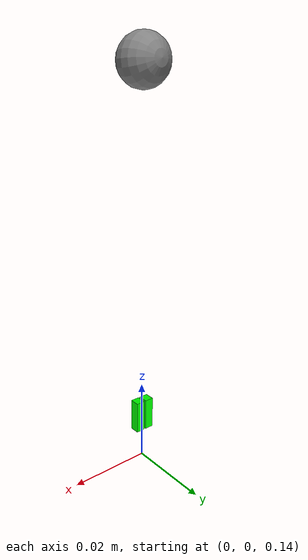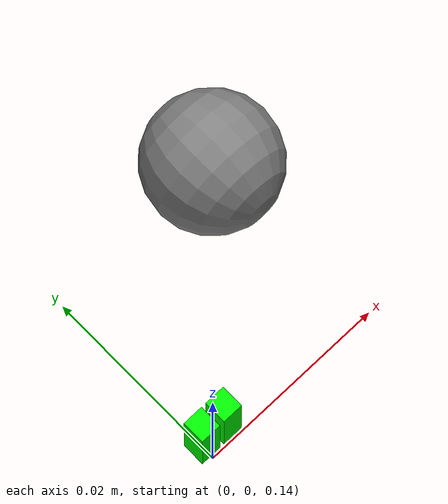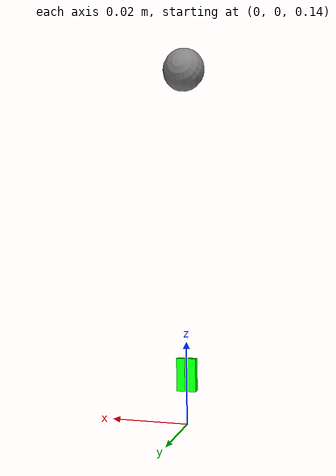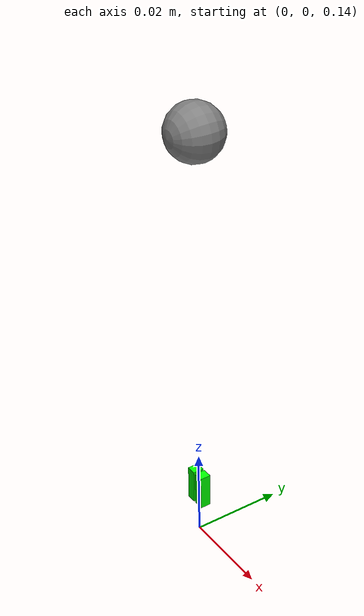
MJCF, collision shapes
<mujoco model="airbot_g2">
  <compiler angle="radian" balanceinertia="true" meshdir="../../meshes/airbot_g2"/>

  <default>
    <default class="g2">
      <joint type="slide" damping="1" frictionloss="0.2" armature="0.01"/>
      <default class="visual">
        <geom type="mesh" contype="0" conaffinity="0" group="0"/>
      </default>
      <default class="collision">
        <geom contype="1" conaffinity="1" group="3" condim="6"
              friction="1.2 0.05 0.01"/>
      </default>
    </default>
  </default>

  <asset>
    <mesh name="g2_base_mesh" file="base_link.STL"/>
    <mesh name="g2_left_mesh" file="left_link.STL"/>
    <mesh name="g2_right_mesh" file="right_link.STL"/>
  </asset>

  <actuator>
    <position name="g2_driver" joint="left_joint" kp="5000" kv="100"
              ctrlrange="-0.0366 0" forcerange="-10 10"/>
  </actuator>

  <equality>
    <joint joint1="left_joint" joint2="right_joint" polycoef="0 1 0 0 0"
           solimp="0.999 0.9999 0.001" solref="0.002 1"/>
  </equality>

  <worldbody>
    <body name="base_link" childclass="g2">
      <inertial pos="0.000059308 -0.00003262 0.041814" mass="0.488"
                fullinertia="0.00115523 0.00137334 0.00042051 -0.000002 0.00000022 -0.00000087"/>
      <geom mesh="g2_base_mesh" class="visual"/>
      <camera name="wrist_cam" pos="0 -0.035 0.09" quat="0.5 0.5 -0.5 0.5" fovy="70"/>
      <body name="left_link" pos="0 0 0.0705" quat="0.707105 0 -0.707108 0">
        <inertial pos="0.018307 0.0000059636 0.012505" mass="0.054004"
                  fullinertia="0.0000246 0.0000478 0.00004892 0 0.00000755 0"/>
        <joint name="left_joint" axis="0 0 -1" range="-0.0366 0"/>
        <geom mesh="g2_left_mesh" class="visual"/>
        <geom name="left_finger_pad" type="box" pos="0.0815 0 0.00135"
              size="0.004 0.0012 0.0011" margin="0.0005" class="collision"
              group="0" rgba="0 1 0 0.35"/>
      </body>
      <body name="right_link" pos="0 0 0.0705" quat="-0.00000259734 0.707105 0.00000259735 0.707108">
        <inertial pos="0.018307 -0.00000068572 0.012505" mass="0.054004"
                  fullinertia="0.0000246 0.0000478 0.00004892 0 -0.00000755 0"/>
        <joint name="right_joint" axis="0 0 -1" range="-0.0366 0"/>
        <geom mesh="g2_right_mesh" class="visual"/>
        <geom name="right_finger_pad" type="box" pos="0.0815 0 0.00135"
              size="0.004 0.0012 0.0011" margin="0.0005" class="collision"
              group="0" rgba="0 1 0 0.35"/>
      </body>
      <site name="tcp" pos="0 0 0.236" quat="0.5 0.5 -0.5 0.5" size="0.006"/>
    </body>
  </worldbody>
</mujoco>
